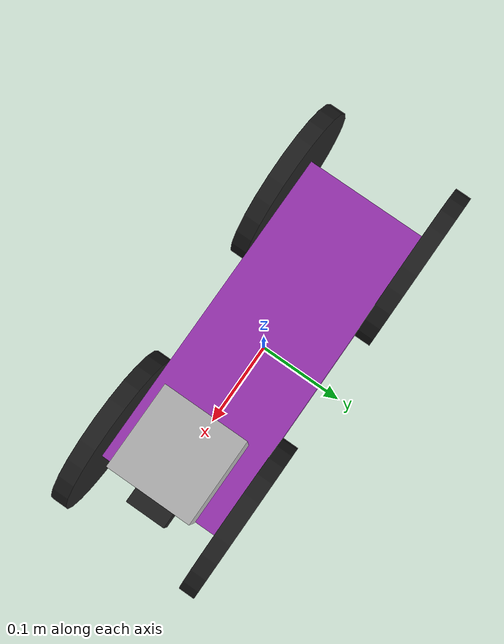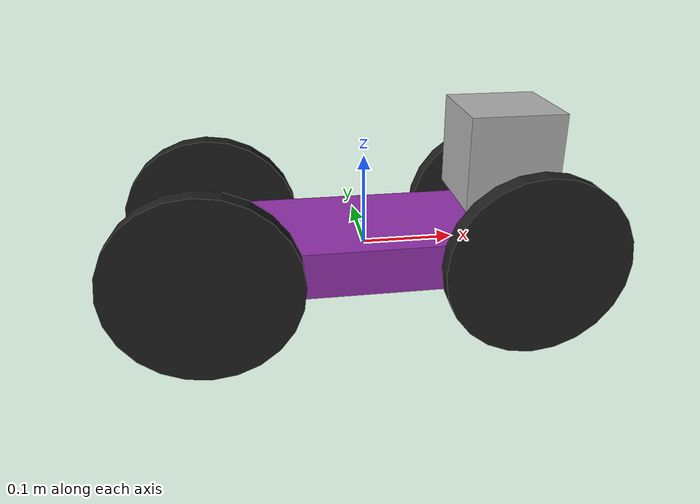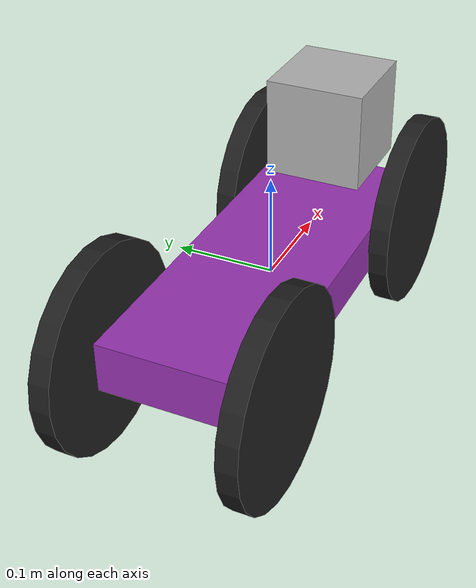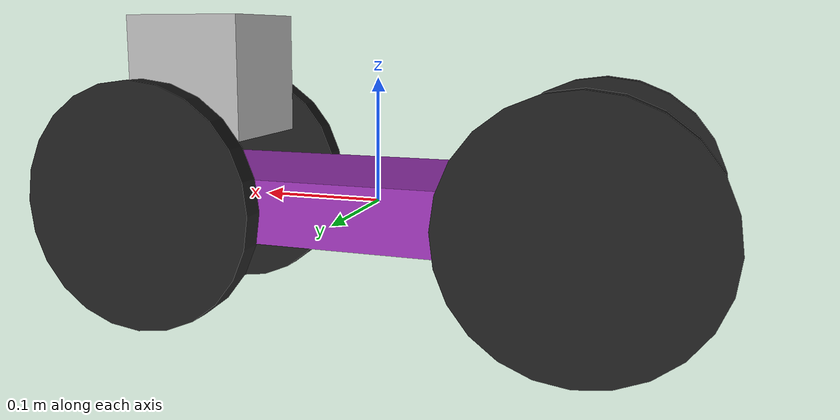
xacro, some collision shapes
<?xml version='1.0'?>

<robot name="my_robot" xmlns:xacro="http://www.ros.org/wiki/xacro">
  <xacro:property name="wheel_radius" value="0.10" />
  <xacro:property name="wheel_width" value="0.02" />
  <xacro:property name="chassis_height" value="0.05" />
  <xacro:property name="chassis_width" value="0.15" />
  <xacro:property name="chassis_length" value="0.4" />

  <xacro:include filename="$(find my_robot)/urdf/my_robot.gazebo" />
  <xacro:object_controller/>

  <link name="robot_footprint"></link>

  <joint name="robot_footprint_joint" type="fixed">
    <origin xyz="0 0 0" rpy="0 0 0" />
    <parent link="robot_footprint"/>
    <child link="chassis" />
  </joint>

  <link name="chassis">
    <visual>
      <geometry>
        <box size="${chassis_length} ${chassis_width} ${chassis_height}"/>
      </geometry>
    </visual>

    <collision>
      <geometry>
        <box size="${chassis_length} ${chassis_width} ${chassis_height}"/>
      </geometry>
    </collision>

    <inertial>
      <mass value="5"/>
      <inertia ixx="${(5/12) * (chassis_width * chassis_width + chassis_height* chassis_height)}" ixy="0" ixz="0" iyy="${(5/12) * (chassis_length * chassis_length + chassis_height * chassis_height)}" iyz="0" izz="${(5/12) * (chassis_width * chassis_width + chassis_length * chassis_length)}" />
    </inertial>
  </link>

  <gazebo reference="chassis">
    <material>Gazebo/Purple</material>
  </gazebo>

  <xacro:macro name="wheel_link" params="name radius width mass">
    <gazebo reference="${name}">
      <material>Gazebo/Black</material>
      <mu1>0.84</mu1>
      <mu2>0.84</mu2>
    </gazebo>

    <link name="${name}">
      <visual>
        <geometry>
          <cylinder length="${width}" radius="${radius}"/>
        </geometry>
      </visual>

      <collision>
        <geometry>
          <cylinder length="${width}" radius="${radius}"/>
        </geometry>
      </collision>

      <inertial>
        <mass value="${mass}"/>
        <inertia ixx="${(1/12) * mass * (3 * radius * radius + width * width)}" ixy="0" ixz="0" iyy="${(1/12) * mass * (3 * radius * radius + width * width)}" iyz="0" izz="${(1/2) * mass * radius * radius}"/>
      </inertial>
    </link>
  </xacro:macro>

  <xacro:wheel_link name="wFL" radius="${wheel_radius}" width="${wheel_width}" mass="0.3"/>

  <joint name="jFL" type="continuous">
    <parent link="chassis"/>
    <child link="wFL"/>
    <axis xyz="0 0 1"/>
    <origin xyz="${chassis_length/2 - 0.03} ${chassis_width/2 + wheel_width/2} 0" rpy="${pi/2} 0 0" />
    <dynamics friction="0.1"/>
  </joint>

  <xacro:wheel_link name="wBL" radius="${wheel_radius}" width="${wheel_width}" mass="0.3"/>

  <joint name="jBL" type="continuous">
    <parent link="chassis"/>
    <child link="wBL"/>
    <axis xyz="0 0 1"/>
    <origin xyz="-${chassis_length/2 - 0.03} ${chassis_width/2 + wheel_width/2} 0" rpy="${pi/2} 0 0" />
    <dynamics friction="0.1"/>
  </joint>

  <xacro:wheel_link name="wFR" radius="${wheel_radius}" width="${wheel_width}" mass="0.3"/>

  <joint name="jFR" type="continuous">
    <parent link="chassis"/>
    <child link="wFR"/>
    <axis xyz="0 0 1"/>
    <origin xyz="${chassis_length/2 - 0.03} -${chassis_width/2 + wheel_width/2} 0" rpy="${pi/2} 0 0" />
    <dynamics friction="0.1"/>
  </joint>

  <xacro:wheel_link name="wBR" radius="${wheel_radius}" width="${wheel_width}" mass="0.3"/>

  <joint name="jBR" type="continuous">
    <parent link="chassis"/>
    <child link="wBR"/>
    <axis xyz="0 0 1"/>
    <origin xyz="-${chassis_length/2 - 0.03} -${chassis_width/2 + wheel_width/2} 0" rpy="${pi/2} 0 0" />
    <dynamics friction="0.1"/>
  </joint>

  <link name='camera'>
     <pose> 0 0 0 0 0 0</pose>

     <inertial>
       <mass value="0.1"/>
       <origin xyz="0.0 0 0" rpy="0.0 0 0"/>
       <inertia
          ixx="1e-6" ixy="0" ixz="0"
          iyy="1e-6" iyz="0"
          izz="1e-6"
       />
     </inertial>

     <collision name='collision'>
       <origin xyz="0 0 0" rpy=" 0 0 0"/>
       <geometry>
          <box size="0.05 0.05 0.05"/>
       </geometry>
     </collision>

     <visual name='camera_visual'>
       <origin xyz="0 0 0" rpy="0 0 0"/>
       <geometry>
          <box size="0.05 0.05 0.05"/>
       </geometry>
     </visual>
  </link>

  <gazebo reference="camera">
    <material>Gazebo/Black</material>
  </gazebo>

  <joint type="fixed" name="camera_joint">
    <origin xyz="0.2 0 0" rpy="0 0 0"/>
    <child link="camera"/>
    <parent link="chassis"/>
    <axis xyz="0 1 0" rpy="0 0 0"/>
    <limit effort="10000" velocity="1000"/>
    <dynamics damping="1.0" friction="1.0"/>
  </joint>

  <link name='hokuyo'>
    <pose>0 0 0 0 0 0</pose>

    <inertial>
      <mass value="1e-5"/>
      <origin xyz="0.0 0 0" rpy="0.0 0 0"/>
      <inertia
          ixx="1e-6" ixy="0" ixz="0"
          iyy="1e-6" iyz="0"
          izz="1e-6"
      />
    </inertial>

    <collision name='collision'>
      <origin xyz="0 0 0" rpy=" 0 0 0"/>
      <geometry>
        <box size="0.1 0.1 0.1"/>
      </geometry>
    </collision>

    <visual name='hokuyo_visual'>
      <origin xyz="0 0 0" rpy="0 0 0"/>
      <geometry>
        <mesh filename="package://my_robot/meshes/hokuyo.dae"/>
      </geometry>
    </visual>
  </link>

  <joint type="fixed" name="hokuyo_joint">
    <origin xyz="0.15 0.0 0.1" rpy="0 0 0"/>
    <child link="hokuyo"/>
    <parent link="chassis"/>
    <axis xyz="0 1 0" rpy="0 0 0"/>
    <limit effort="10000" velocity="1000"/>
    <dynamics damping="1.0" friction="1.0"/>
  </joint>

</robot>
